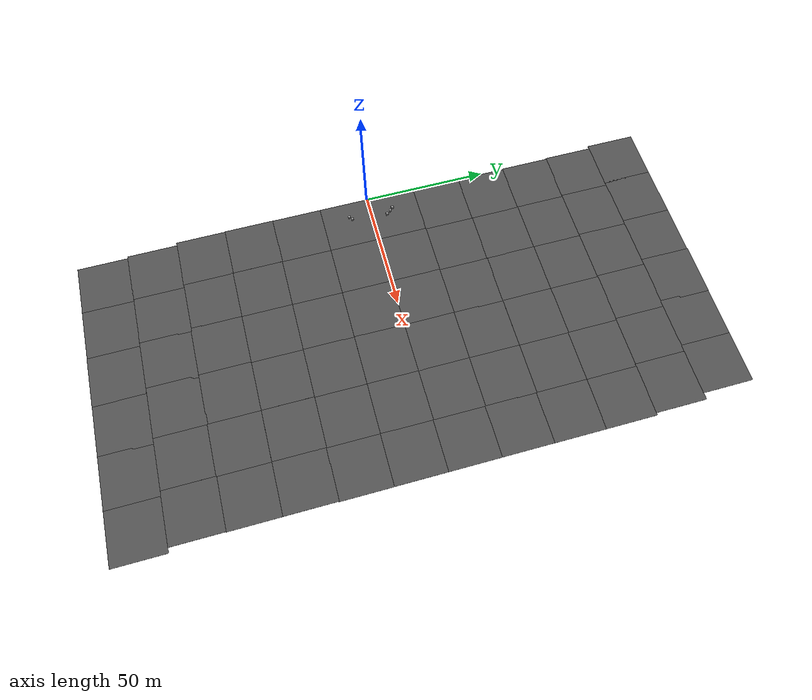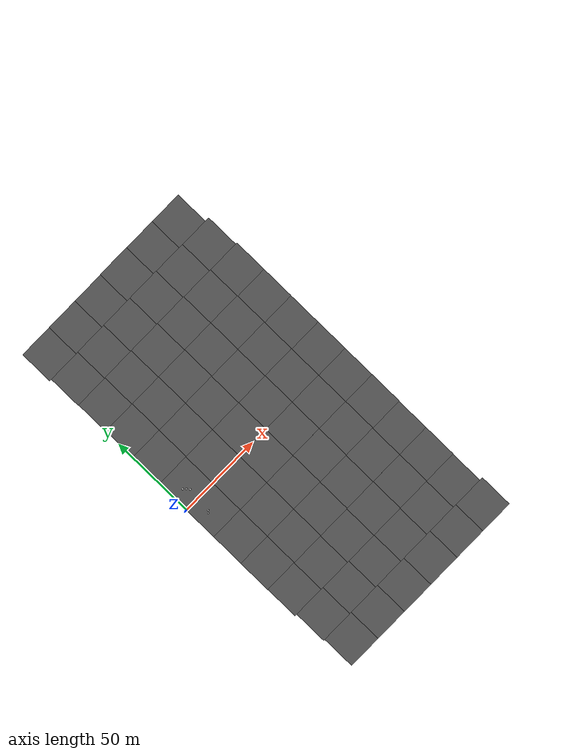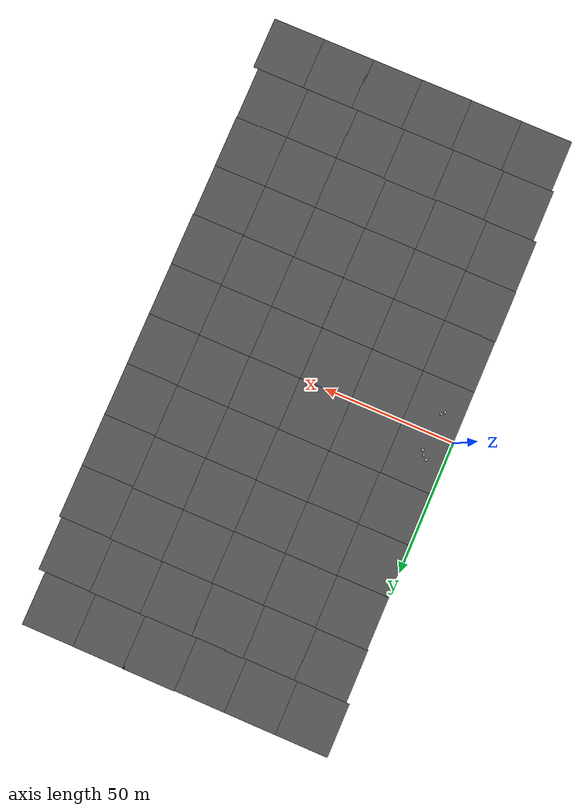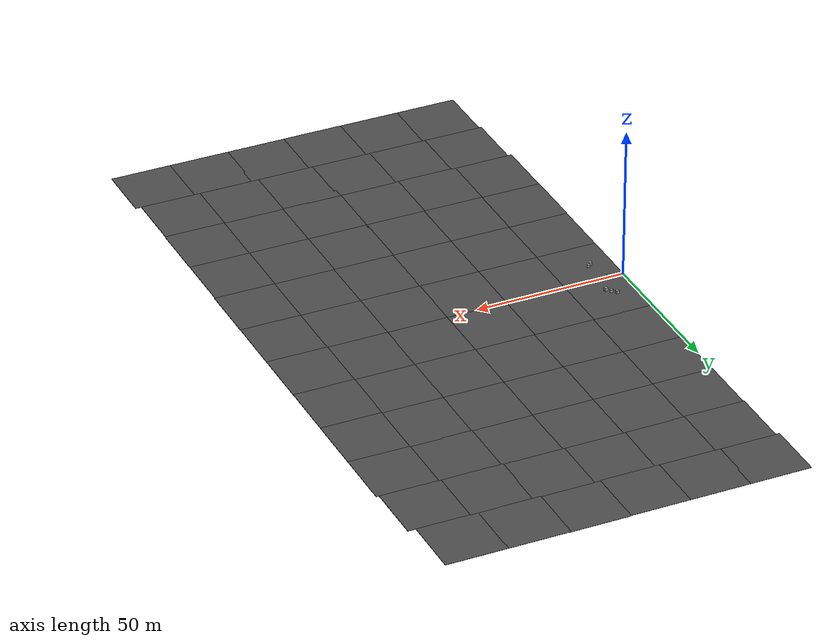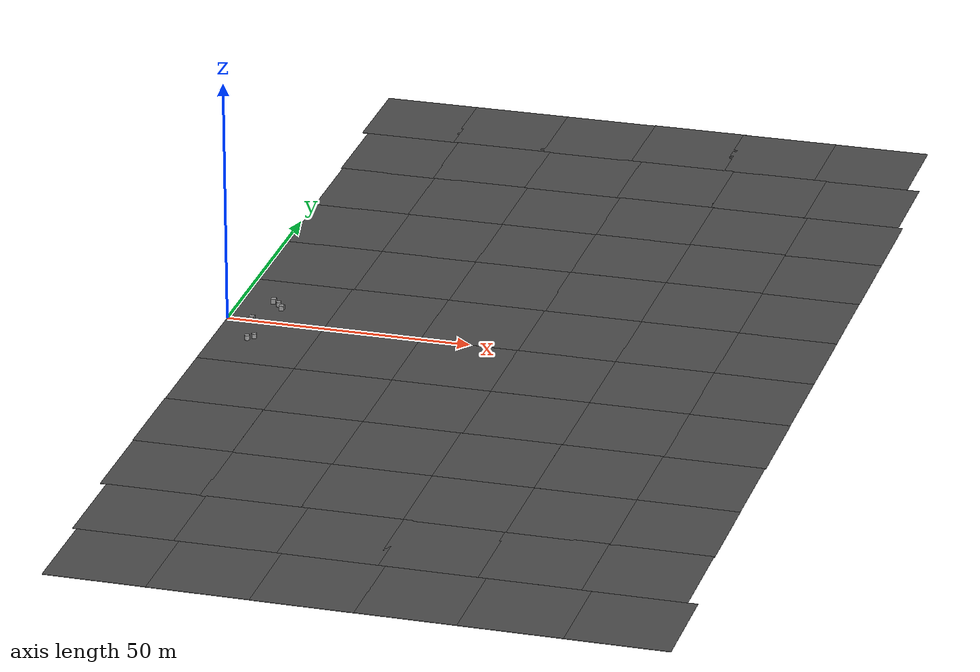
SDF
<sdf version="1.6">
 <world name="default">
  <model name="asphalt_plane">
   <static>1</static>
   <link name="link">
    <collision name="collision"><geometry><box><size>20 20 0.1</size></box></geometry></collision>
    <visual name="visual">
     <cast_shadows>0</cast_shadows>
     <geometry><box><size>20 20 0.1</size></box></geometry>
     <material>
      <script>
       <uri>model://asphalt_plane/materials/scripts</uri>
       <uri>model://asphalt_plane/materials/textures</uri>
       <name>vrc/asphalt</name>
      </script>
     </material>
    </visual>
    <velocity_decay><linear>0</linear><angular>0</angular></velocity_decay>
   </link>
   <pose>10 10 0 0 -0 0</pose>
  </model>
  <model name="asphalt_plane_0">
   <static>1</static>
   <link name="link">
    <collision name="collision"><geometry><box><size>20 20 0.1</size></box></geometry></collision>
    <visual name="visual">
     <cast_shadows>0</cast_shadows>
     <geometry><box><size>20 20 0.1</size></box></geometry>
     <material>
      <script>
       <uri>model://asphalt_plane/materials/scripts</uri>
       <uri>model://asphalt_plane/materials/textures</uri>
       <name>vrc/asphalt</name>
      </script>
     </material>
    </visual>
    <velocity_decay><linear>0</linear><angular>0</angular></velocity_decay>
   </link>
   <pose>10 -10 0 0 -0 0</pose>
  </model>
  <model name="asphalt_plane_4">
   <static>1</static>
   <link name="link">
    <collision name="collision"><geometry><box><size>20 20 0.1</size></box></geometry></collision>
    <visual name="visual">
     <cast_shadows>0</cast_shadows>
     <geometry><box><size>20 20 0.1</size></box></geometry>
     <material>
      <script>
       <uri>model://asphalt_plane/materials/scripts</uri>
       <uri>model://asphalt_plane/materials/textures</uri>
       <name>vrc/asphalt</name>
      </script>
     </material>
    </visual>
    <velocity_decay><linear>0</linear><angular>0</angular></velocity_decay>
   </link>
   <pose>10 -30 0 0 -0 0</pose>
  </model>
  <model name="asphalt_plane_5">
   <static>1</static>
   <link name="link">
    <collision name="collision"><geometry><box><size>20 20 0.1</size></box></geometry></collision>
    <visual name="visual">
     <cast_shadows>0</cast_shadows>
     <geometry><box><size>20 20 0.1</size></box></geometry>
     <material>
      <script>
       <uri>model://asphalt_plane/materials/scripts</uri>
       <uri>model://asphalt_plane/materials/textures</uri>
       <name>vrc/asphalt</name>
      </script>
     </material>
    </visual>
    <velocity_decay><linear>0</linear><angular>0</angular></velocity_decay>
   </link>
   <pose>30 -30 0 0 -0 0</pose>
  </model>
  <model name="asphalt_plane_6">
   <static>1</static>
   <link name="link">
    <collision name="collision"><geometry><box><size>20 20 0.1</size></box></geometry></collision>
    <visual name="visual">
     <cast_shadows>0</cast_shadows>
     <geometry><box><size>20 20 0.1</size></box></geometry>
     <material>
      <script>
       <uri>model://asphalt_plane/materials/scripts</uri>
       <uri>model://asphalt_plane/materials/textures</uri>
       <name>vrc/asphalt</name>
      </script>
     </material>
    </visual>
    <velocity_decay><linear>0</linear><angular>0</angular></velocity_decay>
   </link>
   <pose>30 10 0 0 -0 0</pose>
  </model>
  <model name="asphalt_plane_7">
   <static>1</static>
   <link name="link">
    <collision name="collision"><geometry><box><size>20 20 0.1</size></box></geometry></collision>
    <visual name="visual">
     <cast_shadows>0</cast_shadows>
     <geometry><box><size>20 20 0.1</size></box></geometry>
     <material>
      <script>
       <uri>model://asphalt_plane/materials/scripts</uri>
       <uri>model://asphalt_plane/materials/textures</uri>
       <name>vrc/asphalt</name>
      </script>
     </material>
    </visual>
    <velocity_decay><linear>0</linear><angular>0</angular></velocity_decay>
   </link>
   <pose>30 -10 0 0 -0 0</pose>
  </model>
  <model name="asphalt_plane_9">
   <static>1</static>
   <link name="link">
    <collision name="collision"><geometry><box><size>20 20 0.1</size></box></geometry></collision>
    <visual name="visual">
     <cast_shadows>0</cast_shadows>
     <geometry><box><size>20 20 0.1</size></box></geometry>
     <material>
      <script>
       <uri>model://asphalt_plane/materials/scripts</uri>
       <uri>model://asphalt_plane/materials/textures</uri>
       <name>vrc/asphalt</name>
      </script>
     </material>
    </visual>
   </link>
   <pose>9.90497 -49.8349 0 0 -0 0</pose>
  </model>
  <model name="asphalt_plane_10">
   <static>1</static>
   <link name="link">
    <collision name="collision"><geometry><box><size>20 20 0.1</size></box></geometry></collision>
    <visual name="visual">
     <cast_shadows>0</cast_shadows>
     <geometry><box><size>20 20 0.1</size></box></geometry>
     <material>
      <script>
       <uri>model://asphalt_plane/materials/scripts</uri>
       <uri>model://asphalt_plane/materials/textures</uri>
       <name>vrc/asphalt</name>
      </script>
     </material>
    </visual>
   </link>
   <pose>29.9112 -49.9814 0 0 -0 0</pose>
  </model>
  <model name="asphalt_plane_11">
   <static>1</static>
   <link name="link">
    <collision name="collision"><geometry><box><size>20 20 0.1</size></box></geometry></collision>
    <visual name="visual">
     <cast_shadows>0</cast_shadows>
     <geometry><box><size>20 20 0.1</size></box></geometry>
     <material>
      <script>
       <uri>model://asphalt_plane/materials/scripts</uri>
       <uri>model://asphalt_plane/materials/textures</uri>
       <name>vrc/asphalt</name>
      </script>
     </material>
    </visual>
   </link>
   <pose>49.8726 -49.9956 0 0 -0 0</pose>
  </model>
  <model name="asphalt_plane_12">
   <static>1</static>
   <link name="link">
    <collision name="collision"><geometry><box><size>20 20 0.1</size></box></geometry></collision>
    <visual name="visual">
     <cast_shadows>0</cast_shadows>
     <geometry><box><size>20 20 0.1</size></box></geometry>
     <material>
      <script>
       <uri>model://asphalt_plane/materials/scripts</uri>
       <uri>model://asphalt_plane/materials/textures</uri>
       <name>vrc/asphalt</name>
      </script>
     </material>
    </visual>
   </link>
   <pose>49.9437 -30.008 0 0 -0 0</pose>
  </model>
  <model name="asphalt_plane_13">
   <static>1</static>
   <link name="link">
    <collision name="collision"><geometry><box><size>20 20 0.1</size></box></geometry></collision>
    <visual name="visual">
     <cast_shadows>0</cast_shadows>
     <geometry><box><size>20 20 0.1</size></box></geometry>
     <material>
      <script>
       <uri>model://asphalt_plane/materials/scripts</uri>
       <uri>model://asphalt_plane/materials/textures</uri>
       <name>vrc/asphalt</name>
      </script>
     </material>
    </visual>
   </link>
   <pose>49.8627 -10.0106 0 0 -0 0</pose>
  </model>
  <model name="asphalt_plane_14">
   <static>1</static>
   <link name="link">
    <collision name="collision"><geometry><box><size>20 20 0.1</size></box></geometry></collision>
    <visual name="visual">
     <cast_shadows>0</cast_shadows>
     <geometry><box><size>20 20 0.1</size></box></geometry>
     <material>
      <script>
       <uri>model://asphalt_plane/materials/scripts</uri>
       <uri>model://asphalt_plane/materials/textures</uri>
       <name>vrc/asphalt</name>
      </script>
     </material>
    </visual>
   </link>
   <pose>49.9112 9.97274 0 0 -0 0</pose>
  </model>
  <model name="asphalt_plane_15">
   <static>1</static>
   <link name="link">
    <collision name="collision"><geometry><box><size>20 20 0.1</size></box></geometry></collision>
    <visual name="visual">
     <cast_shadows>0</cast_shadows>
     <geometry><box><size>20 20 0.1</size></box></geometry>
     <material>
      <script>
       <uri>model://asphalt_plane/materials/scripts</uri>
       <uri>model://asphalt_plane/materials/textures</uri>
       <name>vrc/asphalt</name>
      </script>
     </material>
    </visual>
   </link>
   <pose>69.8724 9.89817 0 0 -0 0</pose>
  </model>
  <model name="asphalt_plane_16">
   <static>1</static>
   <link name="link">
    <collision name="collision"><geometry><box><size>20 20 0.1</size></box></geometry></collision>
    <visual name="visual">
     <cast_shadows>0</cast_shadows>
     <geometry><box><size>20 20 0.1</size></box></geometry>
     <material>
      <script>
       <uri>model://asphalt_plane/materials/scripts</uri>
       <uri>model://asphalt_plane/materials/textures</uri>
       <name>vrc/asphalt</name>
      </script>
     </material>
    </visual>
   </link>
   <pose>69.7476 -9.99153 0 0 -0 0</pose>
  </model>
  <model name="asphalt_plane_17">
   <static>1</static>
   <link name="link">
    <collision name="collision"><geometry><box><size>20 20 0.1</size></box></geometry></collision>
    <visual name="visual">
     <cast_shadows>0</cast_shadows>
     <geometry><box><size>20 20 0.1</size></box></geometry>
     <material>
      <script>
       <uri>model://asphalt_plane/materials/scripts</uri>
       <uri>model://asphalt_plane/materials/textures</uri>
       <name>vrc/asphalt</name>
      </script>
     </material>
    </visual>
   </link>
   <pose>69.7642 -29.9969 0 0 -0 0</pose>
  </model>
  <model name="asphalt_plane_18">
   <static>1</static>
   <link name="link">
    <collision name="collision"><geometry><box><size>20 20 0.1</size></box></geometry></collision>
    <visual name="visual">
     <cast_shadows>0</cast_shadows>
     <geometry><box><size>20 20 0.1</size></box></geometry>
     <material>
      <script>
       <uri>model://asphalt_plane/materials/scripts</uri>
       <uri>model://asphalt_plane/materials/textures</uri>
       <name>vrc/asphalt</name>
      </script>
     </material>
    </visual>
   </link>
   <pose>89.7409 -29.9732 0 0 -0 0</pose>
  </model>
  <model name="asphalt_plane_19">
   <static>1</static>
   <link name="link">
    <collision name="collision"><geometry><box><size>20 20 0.1</size></box></geometry></collision>
    <visual name="visual">
     <cast_shadows>0</cast_shadows>
     <geometry><box><size>20 20 0.1</size></box></geometry>
     <material>
      <script>
       <uri>model://asphalt_plane/materials/scripts</uri>
       <uri>model://asphalt_plane/materials/textures</uri>
       <name>vrc/asphalt</name>
      </script>
     </material>
    </visual>
   </link>
   <pose>69.5165 -49.9575 0 0 -0 0</pose>
  </model>
  <model name="asphalt_plane_20">
   <static>1</static>
   <link name="link">
    <collision name="collision"><geometry><box><size>20 20 0.1</size></box></geometry></collision>
    <visual name="visual">
     <cast_shadows>0</cast_shadows>
     <geometry><box><size>20 20 0.1</size></box></geometry>
     <material>
      <script>
       <uri>model://asphalt_plane/materials/scripts</uri>
       <uri>model://asphalt_plane/materials/textures</uri>
       <name>vrc/asphalt</name>
      </script>
     </material>
    </visual>
   </link>
   <pose>89.524 -49.9377 0 0 -0 0</pose>
  </model>
  <model name="asphalt_plane_21">
   <static>1</static>
   <link name="link">
    <collision name="collision"><geometry><box><size>20 20 0.1</size></box></geometry></collision>
    <visual name="visual">
     <cast_shadows>0</cast_shadows>
     <geometry><box><size>20 20 0.1</size></box></geometry>
     <material>
      <script>
       <uri>model://asphalt_plane/materials/scripts</uri>
       <uri>model://asphalt_plane/materials/textures</uri>
       <name>vrc/asphalt</name>
      </script>
     </material>
    </visual>
   </link>
   <pose>89.7231 -10.0366 0 0 -0 0</pose>
  </model>
  <model name="asphalt_plane_22">
   <static>1</static>
   <link name="link">
    <collision name="collision"><geometry><box><size>20 20 0.1</size></box></geometry></collision>
    <visual name="visual">
     <cast_shadows>0</cast_shadows>
     <geometry><box><size>20 20 0.1</size></box></geometry>
     <material>
      <script>
       <uri>model://asphalt_plane/materials/scripts</uri>
       <uri>model://asphalt_plane/materials/textures</uri>
       <name>vrc/asphalt</name>
      </script>
     </material>
    </visual>
   </link>
   <pose>89.7247 9.89413 0 0 -0 0</pose>
  </model>
  <model name="asphalt_plane_23">
   <static>1</static>
   <link name="link">
    <collision name="collision"><geometry><box><size>20 20 0.1</size></box></geometry></collision>
    <visual name="visual">
     <cast_shadows>0</cast_shadows>
     <geometry><box><size>20 20 0.1</size></box></geometry>
     <material>
      <script>
       <uri>model://asphalt_plane/materials/scripts</uri>
       <uri>model://asphalt_plane/materials/textures</uri>
       <name>vrc/asphalt</name>
      </script>
     </material>
    </visual>
   </link>
   <pose>89.7547 29.8835 0 0 -0 0</pose>
  </model>
  <model name="asphalt_plane_24">
   <static>1</static>
   <link name="link">
    <collision name="collision"><geometry><box><size>20 20 0.1</size></box></geometry></collision>
    <visual name="visual">
     <cast_shadows>0</cast_shadows>
     <geometry><box><size>20 20 0.1</size></box></geometry>
     <material>
      <script>
       <uri>model://asphalt_plane/materials/scripts</uri>
       <uri>model://asphalt_plane/materials/textures</uri>
       <name>vrc/asphalt</name>
      </script>
     </material>
    </visual>
   </link>
   <pose>69.8832 29.8469 0 0 -0 0</pose>
  </model>
  <model name="asphalt_plane_25">
   <static>1</static>
   <link name="link">
    <collision name="collision"><geometry><box><size>20 20 0.1</size></box></geometry></collision>
    <visual name="visual">
     <cast_shadows>0</cast_shadows>
     <geometry><box><size>20 20 0.1</size></box></geometry>
     <material>
      <script>
       <uri>model://asphalt_plane/materials/scripts</uri>
       <uri>model://asphalt_plane/materials/textures</uri>
       <name>vrc/asphalt</name>
      </script>
     </material>
    </visual>
   </link>
   <pose>50.1313 29.9342 0 0 -0 0</pose>
  </model>
  <model name="asphalt_plane_26">
   <static>1</static>
   <link name="link">
    <collision name="collision"><geometry><box><size>20 20 0.1</size></box></geometry></collision>
    <visual name="visual">
     <cast_shadows>0</cast_shadows>
     <geometry><box><size>20 20 0.1</size></box></geometry>
     <material>
      <script>
       <uri>model://asphalt_plane/materials/scripts</uri>
       <uri>model://asphalt_plane/materials/textures</uri>
       <name>vrc/asphalt</name>
      </script>
     </material>
    </visual>
   </link>
   <pose>30.2259 29.8587 0 0 -0 0</pose>
  </model>
  <model name="asphalt_plane_27">
   <static>1</static>
   <link name="link">
    <collision name="collision"><geometry><box><size>20 20 0.1</size></box></geometry></collision>
    <visual name="visual">
     <cast_shadows>0</cast_shadows>
     <geometry><box><size>20 20 0.1</size></box></geometry>
     <material>
      <script>
       <uri>model://asphalt_plane/materials/scripts</uri>
       <uri>model://asphalt_plane/materials/textures</uri>
       <name>vrc/asphalt</name>
      </script>
     </material>
    </visual>
   </link>
   <pose>10.3485 29.8638 0 0 -0 0</pose>
  </model>
  <model name="asphalt_plane_48">
   <static>1</static>
   <link name="link">
    <collision name="collision"><geometry><box><size>20 20 0.1</size></box></geometry></collision>
    <visual name="visual">
     <cast_shadows>0</cast_shadows>
     <geometry><box><size>20 20 0.1</size></box></geometry>
     <material>
      <script>
       <uri>model://asphalt_plane/materials/scripts</uri>
       <uri>model://asphalt_plane/materials/textures</uri>
       <name>vrc/asphalt</name>
      </script>
     </material>
    </visual>
   </link>
   <pose>10.317 49.7326 0 0 -0 0</pose>
  </model>
  <model name="asphalt_plane_49">
   <static>1</static>
   <link name="link">
    <collision name="collision"><geometry><box><size>20 20 0.1</size></box></geometry></collision>
    <visual name="visual">
     <cast_shadows>0</cast_shadows>
     <geometry><box><size>20 20 0.1</size></box></geometry>
     <material>
      <script>
       <uri>model://asphalt_plane/materials/scripts</uri>
       <uri>model://asphalt_plane/materials/textures</uri>
       <name>vrc/asphalt</name>
      </script>
     </material>
    </visual>
   </link>
   <pose>30.1956 49.6959 0 0 -0 0</pose>
  </model>
  <model name="asphalt_plane_50">
   <static>1</static>
   <link name="link">
    <collision name="collision"><geometry><box><size>20 20 0.1</size></box></geometry></collision>
    <visual name="visual">
     <cast_shadows>0</cast_shadows>
     <geometry><box><size>20 20 0.1</size></box></geometry>
     <material>
      <script>
       <uri>model://asphalt_plane/materials/scripts</uri>
       <uri>model://asphalt_plane/materials/textures</uri>
       <name>vrc/asphalt</name>
      </script>
     </material>
    </visual>
   </link>
   <pose>50.0171 49.7575 0 0 -0 0</pose>
  </model>
  <model name="asphalt_plane_51">
   <static>1</static>
   <link name="link">
    <collision name="collision"><geometry><box><size>20 20 0.1</size></box></geometry></collision>
    <visual name="visual">
     <cast_shadows>0</cast_shadows>
     <geometry><box><size>20 20 0.1</size></box></geometry>
     <material>
      <script>
       <uri>model://asphalt_plane/materials/scripts</uri>
       <uri>model://asphalt_plane/materials/textures</uri>
       <name>vrc/asphalt</name>
      </script>
     </material>
    </visual>
   </link>
   <pose>89.832 49.8753 0 0 -0 0</pose>
  </model>
  <model name="asphalt_plane_52">
   <static>1</static>
   <link name="link">
    <collision name="collision"><geometry><box><size>20 20 0.1</size></box></geometry></collision>
    <visual name="visual">
     <cast_shadows>0</cast_shadows>
     <geometry><box><size>20 20 0.1</size></box></geometry>
     <material>
      <script>
       <uri>model://asphalt_plane/materials/scripts</uri>
       <uri>model://asphalt_plane/materials/textures</uri>
       <name>vrc/asphalt</name>
      </script>
     </material>
    </visual>
   </link>
   <pose>69.9278 49.8517 0 0 -0 0</pose>
  </model>
  <model name="asphalt_plane_53">
   <static>1</static>
   <link name="link">
    <collision name="collision"><geometry><box><size>20 20 0.1</size></box></geometry></collision>
    <visual name="visual">
     <cast_shadows>0</cast_shadows>
     <geometry><box><size>20 20 0.1</size></box></geometry>
     <material>
      <script>
       <uri>model://asphalt_plane/materials/scripts</uri>
       <uri>model://asphalt_plane/materials/textures</uri>
       <name>vrc/asphalt</name>
      </script>
     </material>
    </visual>
   </link>
   <pose>89.7044 69.5615 0 0 -0 0</pose>
  </model>
  <model name="asphalt_plane_54">
   <static>1</static>
   <link name="link">
    <collision name="collision"><geometry><box><size>20 20 0.1</size></box></geometry></collision>
    <visual name="visual">
     <cast_shadows>0</cast_shadows>
     <geometry><box><size>20 20 0.1</size></box></geometry>
     <material>
      <script>
       <uri>model://asphalt_plane/materials/scripts</uri>
       <uri>model://asphalt_plane/materials/textures</uri>
       <name>vrc/asphalt</name>
      </script>
     </material>
    </visual>
   </link>
   <pose>69.8661 69.7307 0 0 -0 0</pose>
  </model>
  <model name="asphalt_plane_55">
   <static>1</static>
   <link name="link">
    <collision name="collision"><geometry><box><size>20 20 0.1</size></box></geometry></collision>
    <visual name="visual">
     <cast_shadows>0</cast_shadows>
     <geometry><box><size>20 20 0.1</size></box></geometry>
     <material>
      <script>
       <uri>model://asphalt_plane/materials/scripts</uri>
       <uri>model://asphalt_plane/materials/textures</uri>
       <name>vrc/asphalt</name>
      </script>
     </material>
    </visual>
   </link>
   <pose>50.0081 69.731 0 0 -0 0</pose>
  </model>
  <model name="asphalt_plane_56">
   <static>1</static>
   <link name="link">
    <collision name="collision"><geometry><box><size>20 20 0.1</size></box></geometry></collision>
    <visual name="visual">
     <cast_shadows>0</cast_shadows>
     <geometry><box><size>20 20 0.1</size></box></geometry>
     <material>
      <script>
       <uri>model://asphalt_plane/materials/scripts</uri>
       <uri>model://asphalt_plane/materials/textures</uri>
       <name>vrc/asphalt</name>
      </script>
     </material>
    </visual>
   </link>
   <pose>30.0508 69.6751 0 0 -0 0</pose>
  </model>
  <model name="asphalt_plane_57">
   <static>1</static>
   <link name="link">
    <collision name="collision"><geometry><box><size>20 20 0.1</size></box></geometry></collision>
    <visual name="visual">
     <cast_shadows>0</cast_shadows>
     <geometry><box><size>20 20 0.1</size></box></geometry>
     <material>
      <script>
       <uri>model://asphalt_plane/materials/scripts</uri>
       <uri>model://asphalt_plane/materials/textures</uri>
       <name>vrc/asphalt</name>
      </script>
     </material>
    </visual>
   </link>
   <pose>10.1046 69.5693 0 0 -0 0</pose>
  </model>
  <model name="asphalt_plane_62">
   <static>1</static>
   <link name="link">
    <collision name="collision"><geometry><box><size>20 20 0.1</size></box></geometry></collision>
    <visual name="visual">
     <cast_shadows>0</cast_shadows>
     <geometry><box><size>20 20 0.1</size></box></geometry>
     <material>
      <script>
       <uri>model://asphalt_plane/materials/scripts</uri>
       <uri>model://asphalt_plane/materials/textures</uri>
       <name>vrc/asphalt</name>
      </script>
     </material>
    </visual>
   </link>
   <pose>89.5542 -69.9429 0 0 -0 0</pose>
  </model>
  <model name="asphalt_plane_63">
   <static>1</static>
   <link name="link">
    <collision name="collision"><geometry><box><size>20 20 0.1</size></box></geometry></collision>
    <visual name="visual">
     <cast_shadows>0</cast_shadows>
     <geometry><box><size>20 20 0.1</size></box></geometry>
     <material>
      <script>
       <uri>model://asphalt_plane/materials/scripts</uri>
       <uri>model://asphalt_plane/materials/textures</uri>
       <name>vrc/asphalt</name>
      </script>
     </material>
    </visual>
   </link>
   <pose>69.5613 -69.949 0 0 -0 0</pose>
  </model>
  <model name="asphalt_plane_64">
   <static>1</static>
   <link name="link">
    <collision name="collision"><geometry><box><size>20 20 0.1</size></box></geometry></collision>
    <visual name="visual">
     <cast_shadows>0</cast_shadows>
     <geometry><box><size>20 20 0.1</size></box></geometry>
     <material>
      <script>
       <uri>model://asphalt_plane/materials/scripts</uri>
       <uri>model://asphalt_plane/materials/textures</uri>
       <name>vrc/asphalt</name>
      </script>
     </material>
    </visual>
   </link>
   <pose>49.6276 -69.956 0 0 -0 0</pose>
  </model>
  <model name="asphalt_plane_65">
   <static>1</static>
   <link name="link">
    <collision name="collision"><geometry><box><size>20 20 0.1</size></box></geometry></collision>
    <visual name="visual">
     <cast_shadows>0</cast_shadows>
     <geometry><box><size>20 20 0.1</size></box></geometry>
     <material>
      <script>
       <uri>model://asphalt_plane/materials/scripts</uri>
       <uri>model://asphalt_plane/materials/textures</uri>
       <name>vrc/asphalt</name>
      </script>
     </material>
    </visual>
   </link>
   <pose>29.7748 -69.971 0 0 -0 0</pose>
  </model>
  <model name="asphalt_plane_66">
   <static>1</static>
   <link name="link">
    <collision name="collision"><geometry><box><size>20 20 0.1</size></box></geometry></collision>
    <visual name="visual">
     <cast_shadows>0</cast_shadows>
     <geometry><box><size>20 20 0.1</size></box></geometry>
     <material>
      <script>
       <uri>model://asphalt_plane/materials/scripts</uri>
       <uri>model://asphalt_plane/materials/textures</uri>
       <name>vrc/asphalt</name>
      </script>
     </material>
    </visual>
   </link>
   <pose>10.0475 -69.792 0 0 -0 0</pose>
  </model>
  <model name="asphalt_plane_71">
   <static>1</static>
   <link name="link">
    <collision name="collision"><geometry><box><size>20 20 0.1</size></box></geometry></collision>
    <visual name="visual">
     <cast_shadows>0</cast_shadows>
     <geometry><box><size>20 20 0.1</size></box></geometry>
     <material>
      <script>
       <uri>model://asphalt_plane/materials/scripts</uri>
       <uri>model://asphalt_plane/materials/textures</uri>
       <name>vrc/asphalt</name>
      </script>
     </material>
    </visual>
   </link>
   <pose>89.3385 -89.5999 0 0 -0 0</pose>
  </model>
  <model name="asphalt_plane_72">
   <static>1</static>
   <link name="link">
    <collision name="collision"><geometry><box><size>20 20 0.1</size></box></geometry></collision>
    <visual name="visual">
     <cast_shadows>0</cast_shadows>
     <geometry><box><size>20 20 0.1</size></box></geometry>
     <material>
      <script>
       <uri>model://asphalt_plane/materials/scripts</uri>
       <uri>model://asphalt_plane/materials/textures</uri>
       <name>vrc/asphalt</name>
      </script>
     </material>
    </visual>
   </link>
   <pose>69.6809 -89.6379 0 0 -0 0</pose>
  </model>
  <model name="asphalt_plane_73">
   <static>1</static>
   <link name="link">
    <collision name="collision"><geometry><box><size>20 20 0.1</size></box></geometry></collision>
    <visual name="visual">
     <cast_shadows>0</cast_shadows>
     <geometry><box><size>20 20 0.1</size></box></geometry>
     <material>
      <script>
       <uri>model://asphalt_plane/materials/scripts</uri>
       <uri>model://asphalt_plane/materials/textures</uri>
       <name>vrc/asphalt</name>
      </script>
     </material>
    </visual>
   </link>
   <pose>50.6169 -89.6539 0 0 -0 0</pose>
  </model>
  <model name="asphalt_plane_74">
   <static>1</static>
   <link name="link">
    <collision name="collision"><geometry><box><size>20 20 0.1</size></box></geometry></collision>
    <visual name="visual">
     <cast_shadows>0</cast_shadows>
     <geometry><box><size>20 20 0.1</size></box></geometry>
     <material>
      <script>
       <uri>model://asphalt_plane/materials/scripts</uri>
       <uri>model://asphalt_plane/materials/textures</uri>
       <name>vrc/asphalt</name>
      </script>
     </material>
    </visual>
   </link>
   <pose>31.0386 -89.6778 0 0 -0 0</pose>
  </model>
  <model name="asphalt_plane_75">
   <static>1</static>
   <link name="link">
    <collision name="collision"><geometry><box><size>20 20 0.1</size></box></geometry></collision>
    <visual name="visual">
     <cast_shadows>0</cast_shadows>
     <geometry><box><size>20 20 0.1</size></box></geometry>
     <material>
      <script>
       <uri>model://asphalt_plane/materials/scripts</uri>
       <uri>model://asphalt_plane/materials/textures</uri>
       <name>vrc/asphalt</name>
      </script>
     </material>
    </visual>
   </link>
   <pose>11.2891 -89.6885 0 0 -0 0</pose>
  </model>
  <model name="asphalt_plane_84">
   <static>1</static>
   <link name="link">
    <collision name="collision"><geometry><box><size>20 20 0.1</size></box></geometry></collision>
    <visual name="visual">
     <cast_shadows>0</cast_shadows>
     <geometry><box><size>20 20 0.1</size></box></geometry>
     <material>
      <script>
       <uri>model://asphalt_plane/materials/scripts</uri>
       <uri>model://asphalt_plane/materials/textures</uri>
       <name>vrc/asphalt</name>
      </script>
     </material>
    </visual>
   </link>
   <pose>12.0896 -109.539 0 0 -0 0</pose>
  </model>
  <model name="asphalt_plane_85">
   <static>1</static>
   <link name="link">
    <collision name="collision"><geometry><box><size>20 20 0.1</size></box></geometry></collision>
    <visual name="visual">
     <cast_shadows>0</cast_shadows>
     <geometry><box><size>20 20 0.1</size></box></geometry>
     <material>
      <script>
       <uri>model://asphalt_plane/materials/scripts</uri>
       <uri>model://asphalt_plane/materials/textures</uri>
       <name>vrc/asphalt</name>
      </script>
     </material>
    </visual>
   </link>
   <pose>32.0185 -109.577 0 0 -0 0</pose>
  </model>
  <model name="asphalt_plane_86">
   <static>1</static>
   <link name="link">
    <collision name="collision"><geometry><box><size>20 20 0.1</size></box></geometry></collision>
    <visual name="visual">
     <cast_shadows>0</cast_shadows>
     <geometry><box><size>20 20 0.1</size></box></geometry>
     <material>
      <script>
       <uri>model://asphalt_plane/materials/scripts</uri>
       <uri>model://asphalt_plane/materials/textures</uri>
       <name>vrc/asphalt</name>
      </script>
     </material>
    </visual>
   </link>
   <pose>51.9624 -109.645 0 0 -0 0</pose>
  </model>
  <model name="asphalt_plane_87">
   <static>1</static>
   <link name="link">
    <collision name="collision"><geometry><box><size>20 20 0.1</size></box></geometry></collision>
    <visual name="visual">
     <cast_shadows>0</cast_shadows>
     <geometry><box><size>20 20 0.1</size></box></geometry>
     <material>
      <script>
       <uri>model://asphalt_plane/materials/scripts</uri>
       <uri>model://asphalt_plane/materials/textures</uri>
       <name>vrc/asphalt</name>
      </script>
     </material>
    </visual>
   </link>
   <pose>71.8351 -109.602 0 0 -0 0</pose>
  </model>
  <model name="asphalt_plane_88">
   <static>1</static>
   <link name="link">
    <collision name="collision"><geometry><box><size>20 20 0.1</size></box></geometry></collision>
    <visual name="visual">
     <cast_shadows>0</cast_shadows>
     <geometry><box><size>20 20 0.1</size></box></geometry>
     <material>
      <script>
       <uri>model://asphalt_plane/materials/scripts</uri>
       <uri>model://asphalt_plane/materials/textures</uri>
       <name>vrc/asphalt</name>
      </script>
     </material>
    </visual>
   </link>
   <pose>91.2572 -109.602 0 0 -0 0</pose>
  </model>
  <model name="asphalt_plane_99">
   <static>1</static>
   <link name="link">
    <collision name="collision"><geometry><box><size>20 20 0.1</size></box></geometry></collision>
    <visual name="visual">
     <cast_shadows>0</cast_shadows>
     <geometry><box><size>20 20 0.1</size></box></geometry>
     <material>
      <script>
       <uri>model://asphalt_plane/materials/scripts</uri>
       <uri>model://asphalt_plane/materials/textures</uri>
       <name>vrc/asphalt</name>
      </script>
     </material>
    </visual>
   </link>
   <pose>109.642 69.4481 0 0 -0 0</pose>
  </model>
  <model name="asphalt_plane_100">
   <static>1</static>
   <link name="link">
    <collision name="collision"><geometry><box><size>20 20 0.1</size></box></geometry></collision>
    <visual name="visual">
     <cast_shadows>0</cast_shadows>
     <geometry><box><size>20 20 0.1</size></box></geometry>
     <material>
      <script>
       <uri>model://asphalt_plane/materials/scripts</uri>
       <uri>model://asphalt_plane/materials/textures</uri>
       <name>vrc/asphalt</name>
      </script>
     </material>
    </visual>
   </link>
   <pose>109.644 49.547 0 0 -0 0</pose>
  </model>
  <model name="asphalt_plane_101">
   <static>1</static>
   <link name="link">
    <collision name="collision"><geometry><box><size>20 20 0.1</size></box></geometry></collision>
    <visual name="visual">
     <cast_shadows>0</cast_shadows>
     <geometry><box><size>20 20 0.1</size></box></geometry>
     <material>
      <script>
       <uri>model://asphalt_plane/materials/scripts</uri>
       <uri>model://asphalt_plane/materials/textures</uri>
       <name>vrc/asphalt</name>
      </script>
     </material>
    </visual>
   </link>
   <pose>109.605 29.6299 0 0 -0 0</pose>
  </model>
  <model name="asphalt_plane_102">
   <static>1</static>
   <link name="link">
    <collision name="collision"><geometry><box><size>20 20 0.1</size></box></geometry></collision>
    <visual name="visual">
     <cast_shadows>0</cast_shadows>
     <geometry><box><size>20 20 0.1</size></box></geometry>
     <material>
      <script>
       <uri>model://asphalt_plane/materials/scripts</uri>
       <uri>model://asphalt_plane/materials/textures</uri>
       <name>vrc/asphalt</name>
      </script>
     </material>
    </visual>
   </link>
   <pose>109.634 9.76217 0 0 -0 0</pose>
  </model>
  <model name="asphalt_plane_103">
   <static>1</static>
   <link name="link">
    <collision name="collision"><geometry><box><size>20 20 0.1</size></box></geometry></collision>
    <visual name="visual">
     <cast_shadows>0</cast_shadows>
     <geometry><box><size>20 20 0.1</size></box></geometry>
     <material>
      <script>
       <uri>model://asphalt_plane/materials/scripts</uri>
       <uri>model://asphalt_plane/materials/textures</uri>
       <name>vrc/asphalt</name>
      </script>
     </material>
    </visual>
   </link>
   <pose>109.619 -10.1257 0 0 -0 0</pose>
  </model>
  <model name="asphalt_plane_104">
   <static>1</static>
   <link name="link">
    <collision name="collision"><geometry><box><size>20 20 0.1</size></box></geometry></collision>
    <visual name="visual">
     <cast_shadows>0</cast_shadows>
     <geometry><box><size>20 20 0.1</size></box></geometry>
     <material>
      <script>
       <uri>model://asphalt_plane/materials/scripts</uri>
       <uri>model://asphalt_plane/materials/textures</uri>
       <name>vrc/asphalt</name>
      </script>
     </material>
    </visual>
   </link>
   <pose>109.661 -30.1273 0 0 -0 0</pose>
  </model>
  <model name="asphalt_plane_105">
   <static>1</static>
   <link name="link">
    <collision name="collision"><geometry><box><size>20 20 0.1</size></box></geometry></collision>
    <visual name="visual">
     <cast_shadows>0</cast_shadows>
     <geometry><box><size>20 20 0.1</size></box></geometry>
     <material>
      <script>
       <uri>model://asphalt_plane/materials/scripts</uri>
       <uri>model://asphalt_plane/materials/textures</uri>
       <name>vrc/asphalt</name>
      </script>
     </material>
    </visual>
   </link>
   <pose>109.468 -49.9455 0 0 -0 0</pose>
  </model>
  <model name="asphalt_plane_106">
   <static>1</static>
   <link name="link">
    <collision name="collision"><geometry><box><size>20 20 0.1</size></box></geometry></collision>
    <visual name="visual">
     <cast_shadows>0</cast_shadows>
     <geometry><box><size>20 20 0.1</size></box></geometry>
     <material>
      <script>
       <uri>model://asphalt_plane/materials/scripts</uri>
       <uri>model://asphalt_plane/materials/textures</uri>
       <name>vrc/asphalt</name>
      </script>
     </material>
    </visual>
   </link>
   <pose>109.499 -69.8917 0 0 -0 0</pose>
  </model>
  <model name="asphalt_plane_107">
   <static>1</static>
   <link name="link">
    <collision name="collision"><geometry><box><size>20 20 0.1</size></box></geometry></collision>
    <visual name="visual">
     <cast_shadows>0</cast_shadows>
     <geometry><box><size>20 20 0.1</size></box></geometry>
     <material>
      <script>
       <uri>model://asphalt_plane/materials/scripts</uri>
       <uri>model://asphalt_plane/materials/textures</uri>
       <name>vrc/asphalt</name>
      </script>
     </material>
    </visual>
   </link>
   <pose>109.339 -89.6824 0 0 -0 0</pose>
  </model>
  <model name="asphalt_plane_108">
   <static>1</static>
   <link name="link">
    <collision name="collision"><geometry><box><size>20 20 0.1</size></box></geometry></collision>
    <visual name="visual">
     <cast_shadows>0</cast_shadows>
     <geometry><box><size>20 20 0.1</size></box></geometry>
     <material>
      <script>
       <uri>model://asphalt_plane/materials/scripts</uri>
       <uri>model://asphalt_plane/materials/textures</uri>
       <name>vrc/asphalt</name>
      </script>
     </material>
    </visual>
   </link>
   <pose>111.255 -109.618 0 0 -0 0</pose>
  </model>
  <model name="asphalt_plane_114">
   <static>1</static>
   <link name="link">
    <collision name="collision"><geometry><box><size>20 20 0.1</size></box></geometry></collision>
    <visual name="visual">
     <cast_shadows>0</cast_shadows>
     <geometry><box><size>20 20 0.1</size></box></geometry>
     <material>
      <script>
       <uri>model://asphalt_plane/materials/scripts</uri>
       <uri>model://asphalt_plane/materials/textures</uri>
       <name>vrc/asphalt</name>
      </script>
     </material>
    </visual>
   </link>
   <pose>9.76603 89.31 0 0 -0 0</pose>
  </model>
  <model name="asphalt_plane_115">
   <static>1</static>
   <link name="link">
    <collision name="collision"><geometry><box><size>20 20 0.1</size></box></geometry></collision>
    <visual name="visual">
     <cast_shadows>0</cast_shadows>
     <geometry><box><size>20 20 0.1</size></box></geometry>
     <material>
      <script>
       <uri>model://asphalt_plane/materials/scripts</uri>
       <uri>model://asphalt_plane/materials/textures</uri>
       <name>vrc/asphalt</name>
      </script>
     </material>
    </visual>
   </link>
   <pose>29.5447 89.4317 0 0 -0 0</pose>
  </model>
  <model name="asphalt_plane_116">
   <static>1</static>
   <link name="link">
    <collision name="collision"><geometry><box><size>20 20 0.1</size></box></geometry></collision>
    <visual name="visual">
     <cast_shadows>0</cast_shadows>
     <geometry><box><size>20 20 0.1</size></box></geometry>
     <material>
      <script>
       <uri>model://asphalt_plane/materials/scripts</uri>
       <uri>model://asphalt_plane/materials/textures</uri>
       <name>vrc/asphalt</name>
      </script>
     </material>
    </visual>
   </link>
   <pose>49.4334 89.5024 0 0 -0 0</pose>
  </model>
  <model name="asphalt_plane_117">
   <static>1</static>
   <link name="link">
    <collision name="collision"><geometry><box><size>20 20 0.1</size></box></geometry></collision>
    <visual name="visual">
     <cast_shadows>0</cast_shadows>
     <geometry><box><size>20 20 0.1</size></box></geometry>
     <material>
      <script>
       <uri>model://asphalt_plane/materials/scripts</uri>
       <uri>model://asphalt_plane/materials/textures</uri>
       <name>vrc/asphalt</name>
      </script>
     </material>
    </visual>
   </link>
   <pose>69.2165 89.58 0 0 -0 0</pose>
  </model>
  <model name="asphalt_plane_118">
   <static>1</static>
   <link name="link">
    <collision name="collision"><geometry><box><size>20 20 0.1</size></box></geometry></collision>
    <visual name="visual">
     <cast_shadows>0</cast_shadows>
     <geometry><box><size>20 20 0.1</size></box></geometry>
     <material>
      <script>
       <uri>model://asphalt_plane/materials/scripts</uri>
       <uri>model://asphalt_plane/materials/textures</uri>
       <name>vrc/asphalt</name>
      </script>
     </material>
    </visual>
   </link>
   <pose>89.0003 89.4752 0 0 -0 0</pose>
  </model>
  <model name="asphalt_plane_119">
   <static>1</static>
   <link name="link">
    <collision name="collision"><geometry><box><size>20 20 0.1</size></box></geometry></collision>
    <visual name="visual">
     <cast_shadows>0</cast_shadows>
     <geometry><box><size>20 20 0.1</size></box></geometry>
     <material>
      <script>
       <uri>model://asphalt_plane/materials/scripts</uri>
       <uri>model://asphalt_plane/materials/textures</uri>
       <name>vrc/asphalt</name>
      </script>
     </material>
    </visual>
   </link>
   <pose>108.736 89.3271 0 0 -0 0</pose>
  </model>
  <model name="asphalt_plane_137">
   <static>1</static>
   <link name="link">
    <collision name="collision"><geometry><box><size>20 20 0.1</size></box></geometry></collision>
    <visual name="visual">
     <cast_shadows>0</cast_shadows>
     <geometry><box><size>20 20 0.1</size></box></geometry>
     <material>
      <script>
       <uri>model://asphalt_plane/materials/scripts</uri>
       <uri>model://asphalt_plane/materials/textures</uri>
       <name>vrc/asphalt</name>
      </script>
     </material>
    </visual>
   </link>
   <pose>8.52947 109.202 0 0 -0 0</pose>
  </model>
  <model name="asphalt_plane_138">
   <static>1</static>
   <link name="link">
    <collision name="collision"><geometry><box><size>20 20 0.1</size></box></geometry></collision>
    <visual name="visual">
     <cast_shadows>0</cast_shadows>
     <geometry><box><size>20 20 0.1</size></box></geometry>
     <material>
      <script>
       <uri>model://asphalt_plane/materials/scripts</uri>
       <uri>model://asphalt_plane/materials/textures</uri>
       <name>vrc/asphalt</name>
      </script>
     </material>
    </visual>
   </link>
   <pose>28.0429 109.216 0 0 -0 0</pose>
  </model>
  <model name="asphalt_plane_139">
   <static>1</static>
   <link name="link">
    <collision name="collision"><geometry><box><size>20 20 0.1</size></box></geometry></collision>
    <visual name="visual">
     <cast_shadows>0</cast_shadows>
     <geometry><box><size>20 20 0.1</size></box></geometry>
     <material>
      <script>
       <uri>model://asphalt_plane/materials/scripts</uri>
       <uri>model://asphalt_plane/materials/textures</uri>
       <name>vrc/asphalt</name>
      </script>
     </material>
    </visual>
   </link>
   <pose>47.2732 109.213 0 0 -0 0</pose>
  </model>
  <model name="asphalt_plane_140">
   <static>1</static>
   <link name="link">
    <collision name="collision"><geometry><box><size>20 20 0.1</size></box></geometry></collision>
    <visual name="visual">
     <cast_shadows>0</cast_shadows>
     <geometry><box><size>20 20 0.1</size></box></geometry>
     <material>
      <script>
       <uri>model://asphalt_plane/materials/scripts</uri>
       <uri>model://asphalt_plane/materials/textures</uri>
       <name>vrc/asphalt</name>
      </script>
     </material>
    </visual>
   </link>
   <pose>67.1936 109.412 0 0 -0 0</pose>
  </model>
  <model name="asphalt_plane_141">
   <static>1</static>
   <link name="link">
    <collision name="collision"><geometry><box><size>20 20 0.1</size></box></geometry></collision>
    <visual name="visual">
     <cast_shadows>0</cast_shadows>
     <geometry><box><size>20 20 0.1</size></box></geometry>
     <material>
      <script>
       <uri>model://asphalt_plane/materials/scripts</uri>
       <uri>model://asphalt_plane/materials/textures</uri>
       <name>vrc/asphalt</name>
      </script>
     </material>
    </visual>
   </link>
   <pose>86.4499 109.298 0 0 -0 0</pose>
  </model>
  <model name="asphalt_plane_142">
   <static>1</static>
   <link name="link">
    <collision name="collision"><geometry><box><size>20 20 0.1</size></box></geometry></collision>
    <visual name="visual">
     <cast_shadows>0</cast_shadows>
     <geometry><box><size>20 20 0.1</size></box></geometry>
     <material>
      <script>
       <uri>model://asphalt_plane/materials/scripts</uri>
       <uri>model://asphalt_plane/materials/textures</uri>
       <name>vrc/asphalt</name>
      </script>
     </material>
    </visual>
   </link>
   <pose>106.193 109.258 0 0 -0 0</pose>
  </model>
  <model name="unit_cylinder_0_0">
   <pose>8.18494 7.98541 0.55034 0.000664 0.000151 2.9e-05</pose>
   <link name="link">
    <inertial>
     <mass>1</mass>
     <inertia><ixx>0.145833</ixx><ixy>0</ixy><ixz>0</ixz><iyy>0.145833</iyy><iyz>0</iyz><izz>0.125</izz></inertia>
    </inertial>
    <collision name="collision">
     <geometry><cylinder><radius>0.5</radius><length>1</length></cylinder></geometry>
    </collision>
    <visual name="visual">
     <geometry><cylinder><radius>0.5</radius><length>1</length></cylinder></geometry>
     <material>
      <script><name>Gazebo/Grey</name><uri>file://media/materials/scripts/gazebo.material</uri></script>
     </material>
    </visual>
   </link>
  </model>
  <model name="unit_cylinder_0_3">
   <pose>8.04606 -8.05206 0.54912 0 -0 0</pose>
   <link name="link">
    <inertial>
     <mass>1</mass>
     <inertia><ixx>0.145833</ixx><ixy>0</ixy><ixz>0</ixz><iyy>0.145833</iyy><iyz>0</iyz><izz>0.125</izz></inertia>
    </inertial>
    <collision name="collision">
     <geometry><cylinder><radius>0.5</radius><length>1</length></cylinder></geometry>
    </collision>
    <visual name="visual">
     <geometry><cylinder><radius>0.5</radius><length>1</length></cylinder></geometry>
     <material>
      <script><name>Gazebo/Grey</name><uri>file://media/materials/scripts/gazebo.material</uri></script>
     </material>
    </visual>
   </link>
  </model>
  <model name="unit_box_0_2">
   <pose>5.09732 -0.047449 0.54912 0 -0 0</pose>
   <link name="link">
    <inertial>
     <mass>1</mass>
     <inertia>
      <ixx>0.166667</ixx>
      <ixy>0</ixy>
      <ixz>0</ixz>
      <iyy>0.166667</iyy>
      <iyz>0</iyz>
      <izz>0.166667</izz>
     </inertia>
    </inertial>
    <collision name="collision"><geometry><box><size>1 1 1</size></box></geometry></collision>
    <visual name="visual">
     <geometry><box><size>1 1 1</size></box></geometry>
     <material>
      <script><name>Gazebo/Grey</name><uri>file://media/materials/scripts/gazebo.material</uri></script>
     </material>
    </visual>
   </link>
  </model>
  <model name="unit_cylinder_0_4">
   <pose>6.95796 -9.13086 0.55 0 -0 0</pose>
   <link name="link">
    <inertial>
     <mass>1</mass>
     <inertia><ixx>0.145833</ixx><ixy>0</ixy><ixz>0</ixz><iyy>0.145833</iyy><iyz>0</iyz><izz>0.125</izz></inertia>
    </inertial>
    <collision name="collision">
     <geometry><cylinder><radius>0.5</radius><length>1</length></cylinder></geometry>
    </collision>
    <visual name="visual">
     <geometry><cylinder><radius>0.5</radius><length>1</length></cylinder></geometry>
     <material>
      <script><name>Gazebo/Grey</name><uri>file://media/materials/scripts/gazebo.material</uri></script>
     </material>
    </visual>
   </link>
  </model>
  <model name="unit_box_0_4">
   <pose>6.76748 9.2315 0.55 0 -0 0</pose>
   <link name="link">
    <inertial>
     <mass>1</mass>
     <inertia>
      <ixx>0.166667</ixx>
      <ixy>0</ixy>
      <ixz>0</ixz>
      <iyy>0.166667</iyy>
      <iyz>0</iyz>
      <izz>0.166667</izz>
     </inertia>
    </inertial>
    <collision name="collision"><geometry><box><size>1 1 1</size></box></geometry></collision>
    <visual name="visual">
     <geometry><box><size>1 1 1</size></box></geometry>
     <material>
      <script><name>Gazebo/Grey</name><uri>file://media/materials/scripts/gazebo.material</uri></script>
     </material>
    </visual>
   </link>
  </model>
  <model name="unit_box_0_5">
   <pose>9.29512 6.4173 0.55 0 -0 0</pose>
   <link name="link">
    <inertial>
     <mass>1</mass>
     <inertia>
      <ixx>0.166667</ixx>
      <ixy>0</ixy>
      <ixz>0</ixz>
      <iyy>0.166667</iyy>
      <iyz>0</iyz>
      <izz>0.166667</izz>
     </inertia>
    </inertial>
    <collision name="collision"><geometry><box><size>1 1 1</size></box></geometry></collision>
    <visual name="visual">
     <geometry><box><size>1 1 1</size></box></geometry>
     <material>
      <script><name>Gazebo/Grey</name><uri>file://media/materials/scripts/gazebo.material</uri></script>
     </material>
    </visual>
   </link>
  </model>
 </world>
</sdf>
